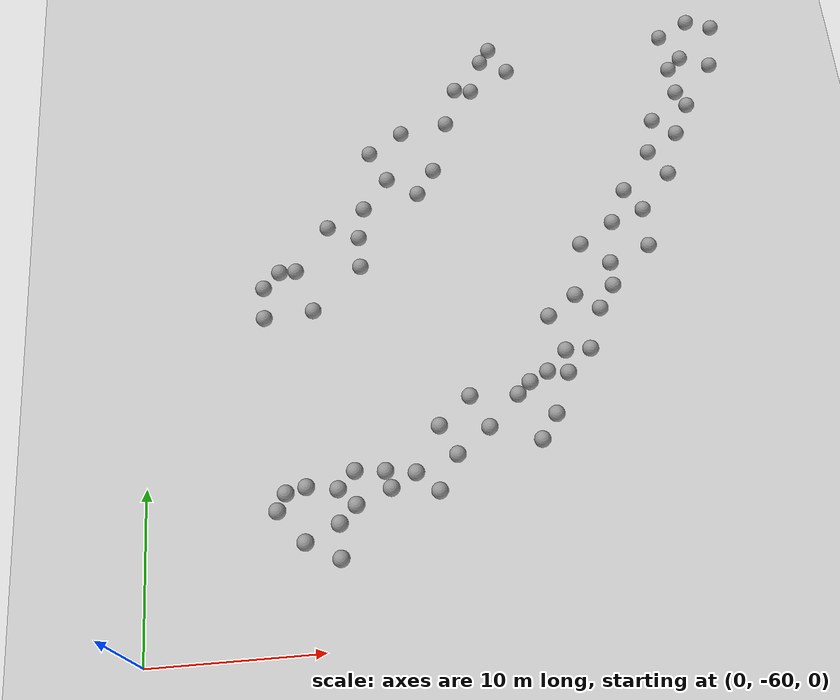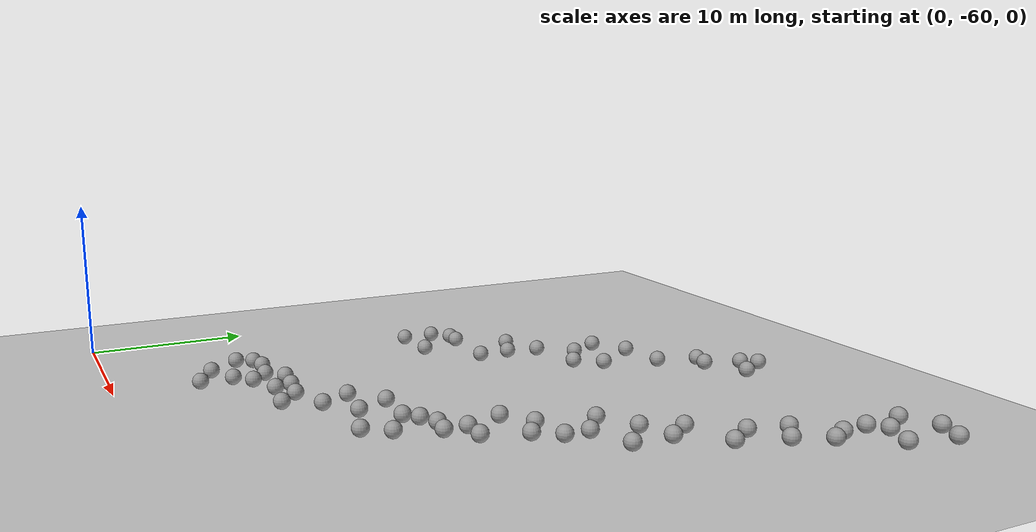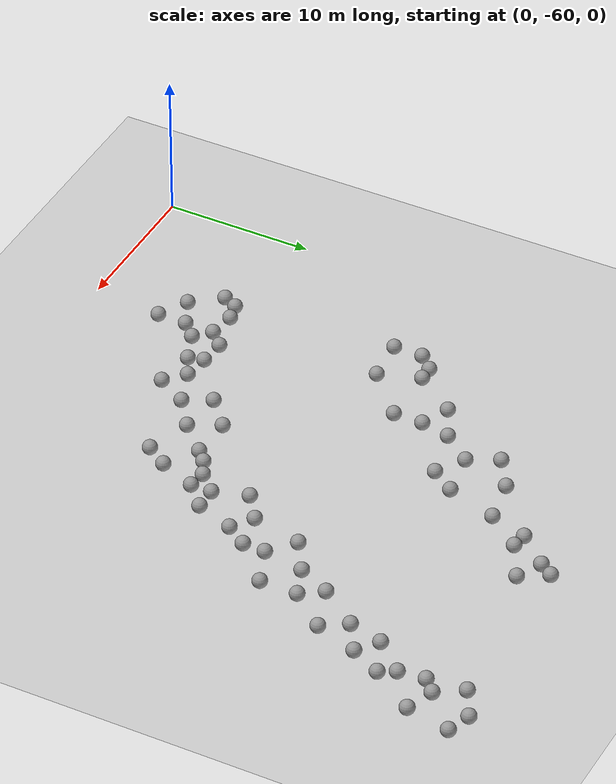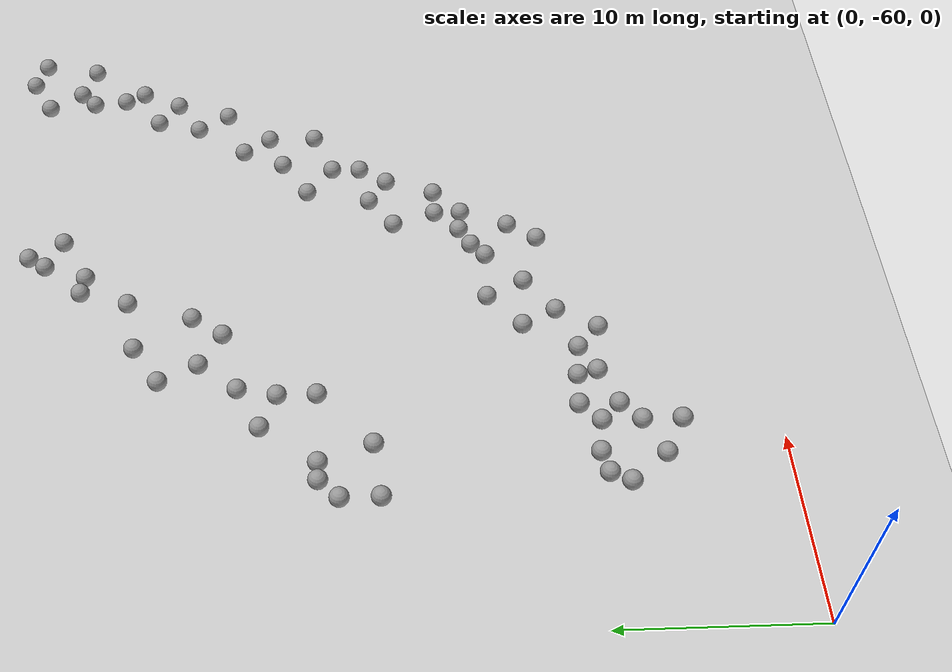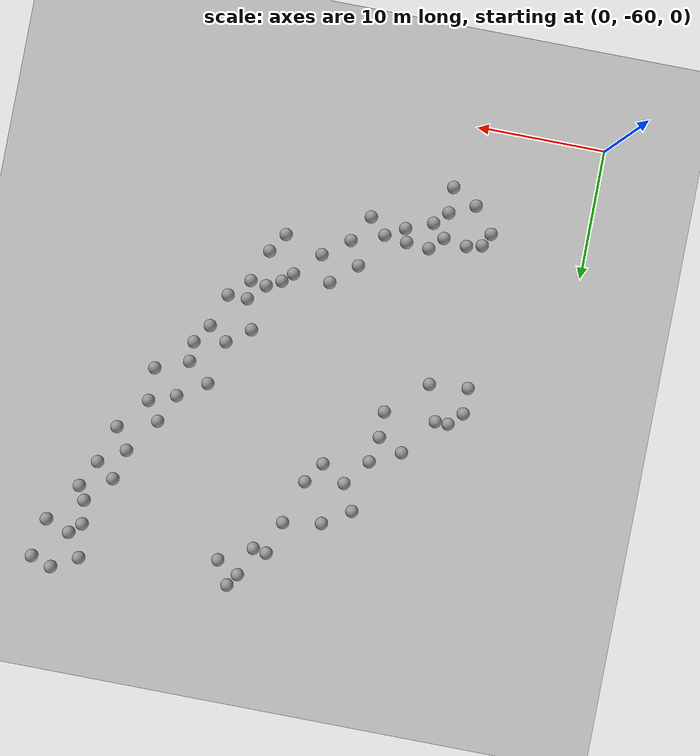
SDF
<sdf version="1.6">
 <world name="default">
  <model name="ground_plane">
   <static>1</static>
   <link name="link">
    <collision name="collision">
     <geometry><plane><normal>0 0 1</normal><size>100 100</size></plane></geometry>
     <surface><friction><ode><mu>100</mu><mu2>50</mu2></ode></friction></surface>
    </collision>
    <visual name="visual">
     <cast_shadows>0</cast_shadows>
     <geometry><plane><normal>0 0 1</normal><size>100 100</size></plane></geometry>
     <material>
      <script><uri>file://media/materials/scripts/gazebo.material</uri><name>Gazebo/Grey</name></script>
     </material>
    </visual>
   </link>
  </model>
  <model name="unit_sphere_0_clone_22">
   <pose>34.4274 -25.9481 0.5 0 -0 0</pose>
   <link name="link">
    <inertial>
     <mass>1</mass>
     <inertia><ixx>0.1</ixx><ixy>0</ixy><ixz>0</ixz><iyy>0.1</iyy><iyz>0</iyz><izz>0.1</izz></inertia>
    </inertial>
    <collision name="collision"><geometry><sphere><radius>0.5</radius></sphere></geometry></collision>
    <visual name="visual">
     <geometry><sphere><radius>0.5</radius></sphere></geometry>
     <material>
      <script><name>Gazebo/Grey</name><uri>file://media/materials/scripts/gazebo.material</uri></script>
     </material>
    </visual>
   </link>
  </model>
  <model name="unit_sphere_0_clone_23">
   <pose>28.938 -35.2104 0.5 0 -0 0</pose>
   <link name="link">
    <inertial>
     <mass>1</mass>
     <inertia><ixx>0.1</ixx><ixy>0</ixy><ixz>0</ixz><iyy>0.1</iyy><iyz>0</iyz><izz>0.1</izz></inertia>
    </inertial>
    <collision name="collision"><geometry><sphere><radius>0.5</radius></sphere></geometry></collision>
    <visual name="visual">
     <geometry><sphere><radius>0.5</radius></sphere></geometry>
     <material>
      <script><name>Gazebo/Grey</name><uri>file://media/materials/scripts/gazebo.material</uri></script>
     </material>
    </visual>
   </link>
  </model>
  <model name="unit_sphere_0_clone_24">
   <pose>22.6448 -45.4054 0.5 -0.042295 0.045819 -0.000971</pose>
   <link name="link">
    <inertial>
     <mass>1</mass>
     <inertia><ixx>0.1</ixx><ixy>0</ixy><ixz>0</ixz><iyy>0.1</iyy><iyz>0</iyz><izz>0.1</izz></inertia>
    </inertial>
    <collision name="collision"><geometry><sphere><radius>0.5</radius></sphere></geometry></collision>
    <visual name="visual">
     <geometry><sphere><radius>0.5</radius></sphere></geometry>
     <material>
      <script><name>Gazebo/Grey</name><uri>file://media/materials/scripts/gazebo.material</uri></script>
     </material>
    </visual>
   </link>
  </model>
  <model name="unit_sphere_0_clone_25">
   <pose>16.8047 -51.5632 0.5 0 -0 0</pose>
   <link name="link">
    <inertial>
     <mass>1</mass>
     <inertia><ixx>0.1</ixx><ixy>0</ixy><ixz>0</ixz><iyy>0.1</iyy><iyz>0</iyz><izz>0.1</izz></inertia>
    </inertial>
    <collision name="collision"><geometry><sphere><radius>0.5</radius></sphere></geometry></collision>
    <visual name="visual">
     <geometry><sphere><radius>0.5</radius></sphere></geometry>
     <material>
      <script><name>Gazebo/Grey</name><uri>file://media/materials/scripts/gazebo.material</uri></script>
     </material>
    </visual>
   </link>
  </model>
  <model name="unit_sphere_0_clone_26">
   <pose>9.03106 -53.9187 0.5 0 -0 0</pose>
   <link name="link">
    <inertial>
     <mass>1</mass>
     <inertia><ixx>0.1</ixx><ixy>0</ixy><ixz>0</ixz><iyy>0.1</iyy><iyz>0</iyz><izz>0.1</izz></inertia>
    </inertial>
    <collision name="collision"><geometry><sphere><radius>0.5</radius></sphere></geometry></collision>
    <visual name="visual">
     <geometry><sphere><radius>0.5</radius></sphere></geometry>
     <material>
      <script><name>Gazebo/Grey</name><uri>file://media/materials/scripts/gazebo.material</uri></script>
     </material>
    </visual>
   </link>
  </model>
  <model name="unit_sphere_0_clone_53">
   <pose>20.9303 -24.7685 0.5 0.010421 0.063507 0.000342</pose>
   <link name="link">
    <inertial>
     <mass>1</mass>
     <inertia><ixx>0.1</ixx><ixy>0</ixy><ixz>0</ixz><iyy>0.1</iyy><iyz>0</iyz><izz>0.1</izz></inertia>
    </inertial>
    <collision name="collision"><geometry><sphere><radius>0.5</radius></sphere></geometry></collision>
    <visual name="visual">
     <geometry><sphere><radius>0.5</radius></sphere></geometry>
     <material>
      <script><name>Gazebo/Grey</name><uri>file://media/materials/scripts/gazebo.material</uri></script>
     </material>
    </visual>
   </link>
  </model>
  <model name="unit_sphere_0_clone_54">
   <pose>16.882 -32.1756 0.5 0 -0 0</pose>
   <link name="link">
    <inertial>
     <mass>1</mass>
     <inertia><ixx>0.1</ixx><ixy>0</ixy><ixz>0</ixz><iyy>0.1</iyy><iyz>0</iyz><izz>0.1</izz></inertia>
    </inertial>
    <collision name="collision"><geometry><sphere><radius>0.5</radius></sphere></geometry></collision>
    <visual name="visual">
     <geometry><sphere><radius>0.5</radius></sphere></geometry>
     <material>
      <script><name>Gazebo/Grey</name><uri>file://media/materials/scripts/gazebo.material</uri></script>
     </material>
    </visual>
   </link>
  </model>
  <model name="unit_sphere_0_clone_55">
   <pose>9.98079 -39.7392 0.5 0 -0 0</pose>
   <link name="link">
    <inertial>
     <mass>1</mass>
     <inertia><ixx>0.1</ixx><ixy>0</ixy><ixz>0</ixz><iyy>0.1</iyy><iyz>0</iyz><izz>0.1</izz></inertia>
    </inertial>
    <collision name="collision"><geometry><sphere><radius>0.5</radius></sphere></geometry></collision>
    <visual name="visual">
     <geometry><sphere><radius>0.5</radius></sphere></geometry>
     <material>
      <script><name>Gazebo/Grey</name><uri>file://media/materials/scripts/gazebo.material</uri></script>
     </material>
    </visual>
   </link>
  </model>
  <model name="unit_sphere_0_clone_71">
   <pose>21.7439 -22.539 0.5 0 -0 0</pose>
   <link name="link">
    <inertial>
     <mass>1</mass>
     <inertia><ixx>0.1</ixx><ixy>0</ixy><ixz>0</ixz><iyy>0.1</iyy><iyz>0</iyz><izz>0.1</izz></inertia>
    </inertial>
    <collision name="collision"><geometry><sphere><radius>0.5</radius></sphere></geometry></collision>
    <visual name="visual">
     <geometry><sphere><radius>0.5</radius></sphere></geometry>
     <material>
      <script><name>Gazebo/Grey</name><uri>file://media/materials/scripts/gazebo.material</uri></script>
     </material>
    </visual>
   </link>
  </model>
  <model name="unit_sphere_0_clone_72">
   <pose>16.1207 -27.6464 0.5 0 -0 0</pose>
   <link name="link">
    <inertial>
     <mass>1</mass>
     <inertia><ixx>0.1</ixx><ixy>0</ixy><ixz>0</ixz><iyy>0.1</iyy><iyz>0</iyz><izz>0.1</izz></inertia>
    </inertial>
    <collision name="collision"><geometry><sphere><radius>0.5</radius></sphere></geometry></collision>
    <visual name="visual">
     <geometry><sphere><radius>0.5</radius></sphere></geometry>
     <material>
      <script><name>Gazebo/Grey</name><uri>file://media/materials/scripts/gazebo.material</uri></script>
     </material>
    </visual>
   </link>
  </model>
  <model name="unit_sphere_0_clone_73">
   <pose>11.0955 -34.1517 0.5 0 -0 0</pose>
   <link name="link">
    <inertial>
     <mass>1</mass>
     <inertia><ixx>0.1</ixx><ixy>0</ixy><ixz>0</ixz><iyy>0.1</iyy><iyz>0</iyz><izz>0.1</izz></inertia>
    </inertial>
    <collision name="collision"><geometry><sphere><radius>0.5</radius></sphere></geometry></collision>
    <visual name="visual">
     <geometry><sphere><radius>0.5</radius></sphere></geometry>
     <material>
      <script><name>Gazebo/Grey</name><uri>file://media/materials/scripts/gazebo.material</uri></script>
     </material>
    </visual>
   </link>
  </model>
  <model name="unit_sphere_0_clone_119">
   <pose>35.1208 -23.2991 0.5 0 -0 0</pose>
   <link name="link">
    <inertial>
     <mass>1</mass>
     <inertia><ixx>0.1</ixx><ixy>0</ixy><ixz>0</ixz><iyy>0.1</iyy><iyz>0</iyz><izz>0.1</izz></inertia>
    </inertial>
    <collision name="collision"><geometry><sphere><radius>0.5</radius></sphere></geometry></collision>
    <visual name="visual">
     <geometry><sphere><radius>0.5</radius></sphere></geometry>
     <material>
      <script><name>Gazebo/Grey</name><uri>file://media/materials/scripts/gazebo.material</uri></script>
     </material>
    </visual>
   </link>
  </model>
  <model name="unit_sphere_0_clone_120">
   <pose>31.9432 -30.3419 0.5 0 -0 0</pose>
   <link name="link">
    <inertial>
     <mass>1</mass>
     <inertia><ixx>0.1</ixx><ixy>0</ixy><ixz>0</ixz><iyy>0.1</iyy><iyz>0</iyz><izz>0.1</izz></inertia>
    </inertial>
    <collision name="collision"><geometry><sphere><radius>0.5</radius></sphere></geometry></collision>
    <visual name="visual">
     <geometry><sphere><radius>0.5</radius></sphere></geometry>
     <material>
      <script><name>Gazebo/Grey</name><uri>file://media/materials/scripts/gazebo.material</uri></script>
     </material>
    </visual>
   </link>
  </model>
  <model name="unit_sphere_0_clone_121">
   <pose>31 -34.4472 0.5 0 -0 0</pose>
   <link name="link">
    <inertial>
     <mass>1</mass>
     <inertia><ixx>0.1</ixx><ixy>0</ixy><ixz>0</ixz><iyy>0.1</iyy><iyz>0</iyz><izz>0.1</izz></inertia>
    </inertial>
    <collision name="collision"><geometry><sphere><radius>0.5</radius></sphere></geometry></collision>
    <visual name="visual">
     <geometry><sphere><radius>0.5</radius></sphere></geometry>
     <material>
      <script><name>Gazebo/Grey</name><uri>file://media/materials/scripts/gazebo.material</uri></script>
     </material>
    </visual>
   </link>
  </model>
  <model name="unit_sphere_0_clone_122">
   <pose>33.9652 -29.0773 0.5 0 -0 0</pose>
   <link name="link">
    <inertial>
     <mass>1</mass>
     <inertia><ixx>0.1</ixx><ixy>0</ixy><ixz>0</ixz><iyy>0.1</iyy><iyz>0</iyz><izz>0.1</izz></inertia>
    </inertial>
    <collision name="collision"><geometry><sphere><radius>0.5</radius></sphere></geometry></collision>
    <visual name="visual">
     <geometry><sphere><radius>0.5</radius></sphere></geometry>
     <material>
      <script><name>Gazebo/Grey</name><uri>file://media/materials/scripts/gazebo.material</uri></script>
     </material>
    </visual>
   </link>
  </model>
  <model name="unit_sphere_0_clone_123">
   <pose>26.7672 -36.5826 0.5 0 -0 0</pose>
   <link name="link">
    <inertial>
     <mass>1</mass>
     <inertia><ixx>0.1</ixx><ixy>0</ixy><ixz>0</ixz><iyy>0.1</iyy><iyz>0</iyz><izz>0.1</izz></inertia>
    </inertial>
    <collision name="collision"><geometry><sphere><radius>0.5</radius></sphere></geometry></collision>
    <visual name="visual">
     <geometry><sphere><radius>0.5</radius></sphere></geometry>
     <material>
      <script><name>Gazebo/Grey</name><uri>file://media/materials/scripts/gazebo.material</uri></script>
     </material>
    </visual>
   </link>
  </model>
  <model name="unit_sphere_0_clone_124">
   <pose>24.2338 -41.2787 0.5 0 -0 0</pose>
   <link name="link">
    <inertial>
     <mass>1</mass>
     <inertia><ixx>0.1</ixx><ixy>0</ixy><ixz>0</ixz><iyy>0.1</iyy><iyz>0</iyz><izz>0.1</izz></inertia>
    </inertial>
    <collision name="collision"><geometry><sphere><radius>0.5</radius></sphere></geometry></collision>
    <visual name="visual">
     <geometry><sphere><radius>0.5</radius></sphere></geometry>
     <material>
      <script><name>Gazebo/Grey</name><uri>file://media/materials/scripts/gazebo.material</uri></script>
     </material>
    </visual>
   </link>
  </model>
  <model name="unit_sphere_0_clone_125">
   <pose>28.4175 -39.5393 0.5 0 -0 0</pose>
   <link name="link">
    <inertial>
     <mass>1</mass>
     <inertia><ixx>0.1</ixx><ixy>0</ixy><ixz>0</ixz><iyy>0.1</iyy><iyz>0</iyz><izz>0.1</izz></inertia>
    </inertial>
    <collision name="collision"><geometry><sphere><radius>0.5</radius></sphere></geometry></collision>
    <visual name="visual">
     <geometry><sphere><radius>0.5</radius></sphere></geometry>
     <material>
      <script><name>Gazebo/Grey</name><uri>file://media/materials/scripts/gazebo.material</uri></script>
     </material>
    </visual>
   </link>
  </model>
  <model name="unit_sphere_0_clone_126">
   <pose>17.0681 -47.6854 0.5 0 -0 0</pose>
   <link name="link">
    <inertial>
     <mass>1</mass>
     <inertia><ixx>0.1</ixx><ixy>0</ixy><ixz>0</ixz><iyy>0.1</iyy><iyz>0</iyz><izz>0.1</izz></inertia>
    </inertial>
    <collision name="collision"><geometry><sphere><radius>0.5</radius></sphere></geometry></collision>
    <visual name="visual">
     <geometry><sphere><radius>0.5</radius></sphere></geometry>
     <material>
      <script><name>Gazebo/Grey</name><uri>file://media/materials/scripts/gazebo.material</uri></script>
     </material>
    </visual>
   </link>
  </model>
  <model name="unit_sphere_0_clone_127">
   <pose>11 -55 0.5 0 -0 0</pose>
   <link name="link">
    <inertial>
     <mass>1</mass>
     <inertia><ixx>0.1</ixx><ixy>0</ixy><ixz>0</ixz><iyy>0.1</iyy><iyz>0</iyz><izz>0.1</izz></inertia>
    </inertial>
    <collision name="collision"><geometry><sphere><radius>0.5</radius></sphere></geometry></collision>
    <visual name="visual">
     <geometry><sphere><radius>0.5</radius></sphere></geometry>
     <material>
      <script><name>Gazebo/Grey</name><uri>file://media/materials/scripts/gazebo.material</uri></script>
     </material>
    </visual>
   </link>
  </model>
  <model name="unit_sphere_0_clone_146">
   <pose>13.7694 -50.1461 0.5 -0.070266 -0.018956 0.000648</pose>
   <link name="link">
    <inertial>
     <mass>1</mass>
     <inertia><ixx>0.1</ixx><ixy>0</ixy><ixz>0</ixz><iyy>0.1</iyy><iyz>0</iyz><izz>0.1</izz></inertia>
    </inertial>
    <collision name="collision"><geometry><sphere><radius>0.5</radius></sphere></geometry></collision>
    <visual name="visual">
     <geometry><sphere><radius>0.5</radius></sphere></geometry>
     <material>
      <script><name>Gazebo/Grey</name><uri>file://media/materials/scripts/gazebo.material</uri></script>
     </material>
    </visual>
   </link>
  </model>
  <model name="unit_sphere_0_clone_147">
   <pose>9.18305 -50.7277 0.5 0 -0 0</pose>
   <link name="link">
    <inertial>
     <mass>1</mass>
     <inertia><ixx>0.1</ixx><ixy>0</ixy><ixz>0</ixz><iyy>0.1</iyy><iyz>0</iyz><izz>0.1</izz></inertia>
    </inertial>
    <collision name="collision"><geometry><sphere><radius>0.5</radius></sphere></geometry></collision>
    <visual name="visual">
     <geometry><sphere><radius>0.5</radius></sphere></geometry>
     <material>
      <script><name>Gazebo/Grey</name><uri>file://media/materials/scripts/gazebo.material</uri></script>
     </material>
    </visual>
   </link>
  </model>
  <model name="unit_sphere_1_clone_1">
   <pose>36 -20.4393 0.5 0 -0 0</pose>
   <link name="link">
    <inertial>
     <mass>1</mass>
     <inertia><ixx>0.1</ixx><ixy>0</ixy><ixz>0</ixz><iyy>0.1</iyy><iyz>0</iyz><izz>0.1</izz></inertia>
    </inertial>
    <collision name="collision"><geometry><sphere><radius>0.5</radius></sphere></geometry></collision>
    <visual name="visual">
     <geometry><sphere><radius>0.5</radius></sphere></geometry>
     <material>
      <script><name>Gazebo/Grey</name><uri>file://media/materials/scripts/gazebo.material</uri></script>
     </material>
    </visual>
   </link>
  </model>
  <model name="unit_sphere_1_clone_7">
   <pose>22.387 -21.6067 0.5 0 -0 0</pose>
   <link name="link">
    <inertial>
     <mass>1</mass>
     <inertia><ixx>0.1</ixx><ixy>0</ixy><ixz>0</ixz><iyy>0.1</iyy><iyz>0</iyz><izz>0.1</izz></inertia>
    </inertial>
    <collision name="collision"><geometry><sphere><radius>0.5</radius></sphere></geometry></collision>
    <visual name="visual">
     <geometry><sphere><radius>0.5</radius></sphere></geometry>
     <material>
      <script><name>Gazebo/Grey</name><uri>file://media/materials/scripts/gazebo.material</uri></script>
     </material>
    </visual>
   </link>
  </model>
  <model name="unit_sphere_1_clone_8">
   <pose>23.4368 -23.3859 0.5 0 -0 0</pose>
   <link name="link">
    <inertial>
     <mass>1</mass>
     <inertia><ixx>0.1</ixx><ixy>0</ixy><ixz>0</ixz><iyy>0.1</iyy><iyz>0</iyz><izz>0.1</izz></inertia>
    </inertial>
    <collision name="collision"><geometry><sphere><radius>0.5</radius></sphere></geometry></collision>
    <visual name="visual">
     <geometry><sphere><radius>0.5</radius></sphere></geometry>
     <material>
      <script><name>Gazebo/Grey</name><uri>file://media/materials/scripts/gazebo.material</uri></script>
     </material>
    </visual>
   </link>
  </model>
  <model name="unit_sphere_1_clone_9">
   <pose>19.8801 -24.5966 0.5 -0.010448 -0.063271 0.00034</pose>
   <link name="link">
    <inertial>
     <mass>1</mass>
     <inertia><ixx>0.1</ixx><ixy>0</ixy><ixz>0</ixz><iyy>0.1</iyy><iyz>0</iyz><izz>0.1</izz></inertia>
    </inertial>
    <collision name="collision"><geometry><sphere><radius>0.5</radius></sphere></geometry></collision>
    <visual name="visual">
     <geometry><sphere><radius>0.5</radius></sphere></geometry>
     <material>
      <script><name>Gazebo/Grey</name><uri>file://media/materials/scripts/gazebo.material</uri></script>
     </material>
    </visual>
   </link>
  </model>
  <model name="unit_sphere_1_clone_10">
   <pose>19.0775 -27.1391 0.5 0 -0 0</pose>
   <link name="link">
    <inertial>
     <mass>1</mass>
     <inertia><ixx>0.1</ixx><ixy>0</ixy><ixz>0</ixz><iyy>0.1</iyy><iyz>0</iyz><izz>0.1</izz></inertia>
    </inertial>
    <collision name="collision"><geometry><sphere><radius>0.5</radius></sphere></geometry></collision>
    <visual name="visual">
     <geometry><sphere><radius>0.5</radius></sphere></geometry>
     <material>
      <script><name>Gazebo/Grey</name><uri>file://media/materials/scripts/gazebo.material</uri></script>
     </material>
    </visual>
   </link>
  </model>
  <model name="unit_sphere_1_clone_11">
   <pose>18 -30.5615 0.5 0 -0 0</pose>
   <link name="link">
    <inertial>
     <mass>1</mass>
     <inertia><ixx>0.1</ixx><ixy>0</ixy><ixz>0</ixz><iyy>0.1</iyy><iyz>0</iyz><izz>0.1</izz></inertia>
    </inertial>
    <collision name="collision"><geometry><sphere><radius>0.5</radius></sphere></geometry></collision>
    <visual name="visual">
     <geometry><sphere><radius>0.5</radius></sphere></geometry>
     <material>
      <script><name>Gazebo/Grey</name><uri>file://media/materials/scripts/gazebo.material</uri></script>
     </material>
    </visual>
   </link>
  </model>
  <model name="unit_sphere_1_clone_12">
   <pose>14 -29 0.5 0 -0 0</pose>
   <link name="link">
    <inertial>
     <mass>1</mass>
     <inertia><ixx>0.1</ixx><ixy>0</ixy><ixz>0</ixz><iyy>0.1</iyy><iyz>0</iyz><izz>0.1</izz></inertia>
    </inertial>
    <collision name="collision"><geometry><sphere><radius>0.5</radius></sphere></geometry></collision>
    <visual name="visual">
     <geometry><sphere><radius>0.5</radius></sphere></geometry>
     <material>
      <script><name>Gazebo/Grey</name><uri>file://media/materials/scripts/gazebo.material</uri></script>
     </material>
    </visual>
   </link>
  </model>
  <model name="unit_sphere_1_clone_13">
   <pose>15 -31 0.5 0 -0 0</pose>
   <link name="link">
    <inertial>
     <mass>1</mass>
     <inertia><ixx>0.1</ixx><ixy>0</ixy><ixz>0</ixz><iyy>0.1</iyy><iyz>0</iyz><izz>0.1</izz></inertia>
    </inertial>
    <collision name="collision"><geometry><sphere><radius>0.5</radius></sphere></geometry></collision>
    <visual name="visual">
     <geometry><sphere><radius>0.5</radius></sphere></geometry>
     <material>
      <script><name>Gazebo/Grey</name><uri>file://media/materials/scripts/gazebo.material</uri></script>
     </material>
    </visual>
   </link>
  </model>
  <model name="unit_sphere_1_clone_14">
   <pose>13.4163 -33 0.5 0 -0 0</pose>
   <link name="link">
    <inertial>
     <mass>1</mass>
     <inertia><ixx>0.1</ixx><ixy>0</ixy><ixz>0</ixz><iyy>0.1</iyy><iyz>0</iyz><izz>0.1</izz></inertia>
    </inertial>
    <collision name="collision"><geometry><sphere><radius>0.5</radius></sphere></geometry></collision>
    <visual name="visual">
     <geometry><sphere><radius>0.5</radius></sphere></geometry>
     <material>
      <script><name>Gazebo/Grey</name><uri>file://media/materials/scripts/gazebo.material</uri></script>
     </material>
    </visual>
   </link>
  </model>
  <model name="unit_sphere_1_clone_15">
   <pose>13 -35 0.5 0 -0 0</pose>
   <link name="link">
    <inertial>
     <mass>1</mass>
     <inertia><ixx>0.1</ixx><ixy>0</ixy><ixz>0</ixz><iyy>0.1</iyy><iyz>0</iyz><izz>0.1</izz></inertia>
    </inertial>
    <collision name="collision"><geometry><sphere><radius>0.5</radius></sphere></geometry></collision>
    <visual name="visual">
     <geometry><sphere><radius>0.5</radius></sphere></geometry>
     <material>
      <script><name>Gazebo/Grey</name><uri>file://media/materials/scripts/gazebo.material</uri></script>
     </material>
    </visual>
   </link>
  </model>
  <model name="unit_sphere_1_clone_16">
   <pose>13 -37 0.5 0 -0 0</pose>
   <link name="link">
    <inertial>
     <mass>1</mass>
     <inertia><ixx>0.1</ixx><ixy>0</ixy><ixz>0</ixz><iyy>0.1</iyy><iyz>0</iyz><izz>0.1</izz></inertia>
    </inertial>
    <collision name="collision"><geometry><sphere><radius>0.5</radius></sphere></geometry></collision>
    <visual name="visual">
     <geometry><sphere><radius>0.5</radius></sphere></geometry>
     <material>
      <script><name>Gazebo/Grey</name><uri>file://media/materials/scripts/gazebo.material</uri></script>
     </material>
    </visual>
   </link>
  </model>
  <model name="unit_sphere_1_clone_17">
   <pose>9 -37 0.5 0 -0 0</pose>
   <link name="link">
    <inertial>
     <mass>1</mass>
     <inertia><ixx>0.1</ixx><ixy>0</ixy><ixz>0</ixz><iyy>0.1</iyy><iyz>0</iyz><izz>0.1</izz></inertia>
    </inertial>
    <collision name="collision"><geometry><sphere><radius>0.5</radius></sphere></geometry></collision>
    <visual name="visual">
     <geometry><sphere><radius>0.5</radius></sphere></geometry>
     <material>
      <script><name>Gazebo/Grey</name><uri>file://media/materials/scripts/gazebo.material</uri></script>
     </material>
    </visual>
   </link>
  </model>
  <model name="unit_sphere_1_clone_18">
   <pose>8 -37 0.5 0 -0 0</pose>
   <link name="link">
    <inertial>
     <mass>1</mass>
     <inertia><ixx>0.1</ixx><ixy>0</ixy><ixz>0</ixz><iyy>0.1</iyy><iyz>0</iyz><izz>0.1</izz></inertia>
    </inertial>
    <collision name="collision"><geometry><sphere><radius>0.5</radius></sphere></geometry></collision>
    <visual name="visual">
     <geometry><sphere><radius>0.5</radius></sphere></geometry>
     <material>
      <script><name>Gazebo/Grey</name><uri>file://media/materials/scripts/gazebo.material</uri></script>
     </material>
    </visual>
   </link>
  </model>
  <model name="unit_sphere_1_clone_19">
   <pose>7 -40 0.5 0 -0 0</pose>
   <link name="link">
    <inertial>
     <mass>1</mass>
     <inertia><ixx>0.1</ixx><ixy>0</ixy><ixz>0</ixz><iyy>0.1</iyy><iyz>0</iyz><izz>0.1</izz></inertia>
    </inertial>
    <collision name="collision"><geometry><sphere><radius>0.5</radius></sphere></geometry></collision>
    <visual name="visual">
     <geometry><sphere><radius>0.5</radius></sphere></geometry>
     <material>
      <script><name>Gazebo/Grey</name><uri>file://media/materials/scripts/gazebo.material</uri></script>
     </material>
    </visual>
   </link>
  </model>
  <model name="unit_sphere_1_clone_20">
   <pose>7 -38 0.5 0 -0 0</pose>
   <link name="link">
    <inertial>
     <mass>1</mass>
     <inertia><ixx>0.1</ixx><ixy>0</ixy><ixz>0</ixz><iyy>0.1</iyy><iyz>0</iyz><izz>0.1</izz></inertia>
    </inertial>
    <collision name="collision"><geometry><sphere><radius>0.5</radius></sphere></geometry></collision>
    <visual name="visual">
     <geometry><sphere><radius>0.5</radius></sphere></geometry>
     <material>
      <script><name>Gazebo/Grey</name><uri>file://media/materials/scripts/gazebo.material</uri></script>
     </material>
    </visual>
   </link>
  </model>
  <model name="unit_sphere_1_clone_253">
   <pose>7.49742 -52 0.5 0 -0 0</pose>
   <link name="link">
    <inertial>
     <mass>1</mass>
     <inertia><ixx>0.1</ixx><ixy>0</ixy><ixz>0</ixz><iyy>0.1</iyy><iyz>0</iyz><izz>0.1</izz></inertia>
    </inertial>
    <collision name="collision"><geometry><sphere><radius>0.5</radius></sphere></geometry></collision>
    <visual name="visual">
     <geometry><sphere><radius>0.5</radius></sphere></geometry>
     <material>
      <script><name>Gazebo/Grey</name><uri>file://media/materials/scripts/gazebo.material</uri></script>
     </material>
    </visual>
   </link>
  </model>
  <model name="unit_sphere_1_clone_254">
   <pose>8 -51 0.5 0 -0 0</pose>
   <link name="link">
    <inertial>
     <mass>1</mass>
     <inertia><ixx>0.1</ixx><ixy>0</ixy><ixz>0</ixz><iyy>0.1</iyy><iyz>0</iyz><izz>0.1</izz></inertia>
    </inertial>
    <collision name="collision"><geometry><sphere><radius>0.5</radius></sphere></geometry></collision>
    <visual name="visual">
     <geometry><sphere><radius>0.5</radius></sphere></geometry>
     <material>
      <script><name>Gazebo/Grey</name><uri>file://media/materials/scripts/gazebo.material</uri></script>
     </material>
    </visual>
   </link>
  </model>
  <model name="unit_sphere_1_clone_255">
   <pose>11 -53 0.5 0 -0 0</pose>
   <link name="link">
    <inertial>
     <mass>1</mass>
     <inertia><ixx>0.1</ixx><ixy>0</ixy><ixz>0</ixz><iyy>0.1</iyy><iyz>0</iyz><izz>0.1</izz></inertia>
    </inertial>
    <collision name="collision"><geometry><sphere><radius>0.5</radius></sphere></geometry></collision>
    <visual name="visual">
     <geometry><sphere><radius>0.5</radius></sphere></geometry>
     <material>
      <script><name>Gazebo/Grey</name><uri>file://media/materials/scripts/gazebo.material</uri></script>
     </material>
    </visual>
   </link>
  </model>
  <model name="unit_sphere_1_clone_256">
   <pose>12 -50 0.5 0 -0 0</pose>
   <link name="link">
    <inertial>
     <mass>1</mass>
     <inertia><ixx>0.1</ixx><ixy>0</ixy><ixz>0</ixz><iyy>0.1</iyy><iyz>0</iyz><izz>0.1</izz></inertia>
    </inertial>
    <collision name="collision"><geometry><sphere><radius>0.5</radius></sphere></geometry></collision>
    <visual name="visual">
     <geometry><sphere><radius>0.5</radius></sphere></geometry>
     <material>
      <script><name>Gazebo/Grey</name><uri>file://media/materials/scripts/gazebo.material</uri></script>
     </material>
    </visual>
   </link>
  </model>
  <model name="unit_sphere_1_clone_257">
   <pose>12 -52 0.5 0 -0 0</pose>
   <link name="link">
    <inertial>
     <mass>1</mass>
     <inertia><ixx>0.1</ixx><ixy>0</ixy><ixz>0</ixz><iyy>0.1</iyy><iyz>0</iyz><izz>0.1</izz></inertia>
    </inertial>
    <collision name="collision"><geometry><sphere><radius>0.5</radius></sphere></geometry></collision>
    <visual name="visual">
     <geometry><sphere><radius>0.5</radius></sphere></geometry>
     <material>
      <script><name>Gazebo/Grey</name><uri>file://media/materials/scripts/gazebo.material</uri></script>
     </material>
    </visual>
   </link>
  </model>
  <model name="unit_sphere_1_clone_258">
   <pose>14.049 -51.1815 0.5 0.069932 0.018987 0.00065</pose>
   <link name="link">
    <inertial>
     <mass>1</mass>
     <inertia><ixx>0.1</ixx><ixy>0</ixy><ixz>0</ixz><iyy>0.1</iyy><iyz>0</iyz><izz>0.1</izz></inertia>
    </inertial>
    <collision name="collision"><geometry><sphere><radius>0.5</radius></sphere></geometry></collision>
    <visual name="visual">
     <geometry><sphere><radius>0.5</radius></sphere></geometry>
     <material>
      <script><name>Gazebo/Grey</name><uri>file://media/materials/scripts/gazebo.material</uri></script>
     </material>
    </visual>
   </link>
  </model>
  <model name="unit_sphere_1_clone_259">
   <pose>11 -51 0.5 0 -0 0</pose>
   <link name="link">
    <inertial>
     <mass>1</mass>
     <inertia><ixx>0.1</ixx><ixy>0</ixy><ixz>0</ixz><iyy>0.1</iyy><iyz>0</iyz><izz>0.1</izz></inertia>
    </inertial>
    <collision name="collision"><geometry><sphere><radius>0.5</radius></sphere></geometry></collision>
    <visual name="visual">
     <geometry><sphere><radius>0.5</radius></sphere></geometry>
     <material>
      <script><name>Gazebo/Grey</name><uri>file://media/materials/scripts/gazebo.material</uri></script>
     </material>
    </visual>
   </link>
  </model>
  <model name="unit_sphere_1_clone_260">
   <pose>15.526 -50.3817 0.5 0 -0 0</pose>
   <link name="link">
    <inertial>
     <mass>1</mass>
     <inertia><ixx>0.1</ixx><ixy>0</ixy><ixz>0</ixz><iyy>0.1</iyy><iyz>0</iyz><izz>0.1</izz></inertia>
    </inertial>
    <collision name="collision"><geometry><sphere><radius>0.5</radius></sphere></geometry></collision>
    <visual name="visual">
     <geometry><sphere><radius>0.5</radius></sphere></geometry>
     <material>
      <script><name>Gazebo/Grey</name><uri>file://media/materials/scripts/gazebo.material</uri></script>
     </material>
    </visual>
   </link>
  </model>
  <model name="unit_sphere_1_clone_261">
   <pose>18 -49.4937 0.5 0 -0 0</pose>
   <link name="link">
    <inertial>
     <mass>1</mass>
     <inertia><ixx>0.1</ixx><ixy>0</ixy><ixz>0</ixz><iyy>0.1</iyy><iyz>0</iyz><izz>0.1</izz></inertia>
    </inertial>
    <collision name="collision"><geometry><sphere><radius>0.5</radius></sphere></geometry></collision>
    <visual name="visual">
     <geometry><sphere><radius>0.5</radius></sphere></geometry>
     <material>
      <script><name>Gazebo/Grey</name><uri>file://media/materials/scripts/gazebo.material</uri></script>
     </material>
    </visual>
   </link>
  </model>
  <model name="unit_sphere_1_clone_262">
   <pose>20 -48 0.5 0 -0 0</pose>
   <link name="link">
    <inertial>
     <mass>1</mass>
     <inertia><ixx>0.1</ixx><ixy>0</ixy><ixz>0</ixz><iyy>0.1</iyy><iyz>0</iyz><izz>0.1</izz></inertia>
    </inertial>
    <collision name="collision"><geometry><sphere><radius>0.5</radius></sphere></geometry></collision>
    <visual name="visual">
     <geometry><sphere><radius>0.5</radius></sphere></geometry>
     <material>
      <script><name>Gazebo/Grey</name><uri>file://media/materials/scripts/gazebo.material</uri></script>
     </material>
    </visual>
   </link>
  </model>
  <model name="unit_sphere_1_clone_263">
   <pose>23 -49 0.5 0 -0 0</pose>
   <link name="link">
    <inertial>
     <mass>1</mass>
     <inertia><ixx>0.1</ixx><ixy>0</ixy><ixz>0</ixz><iyy>0.1</iyy><iyz>0</iyz><izz>0.1</izz></inertia>
    </inertial>
    <collision name="collision"><geometry><sphere><radius>0.5</radius></sphere></geometry></collision>
    <visual name="visual">
     <geometry><sphere><radius>0.5</radius></sphere></geometry>
     <material>
      <script><name>Gazebo/Grey</name><uri>file://media/materials/scripts/gazebo.material</uri></script>
     </material>
    </visual>
   </link>
  </model>
  <model name="unit_sphere_1_clone_264">
   <pose>19 -46 0.5 0 -0 0</pose>
   <link name="link">
    <inertial>
     <mass>1</mass>
     <inertia><ixx>0.1</ixx><ixy>0</ixy><ixz>0</ixz><iyy>0.1</iyy><iyz>0</iyz><izz>0.1</izz></inertia>
    </inertial>
    <collision name="collision"><geometry><sphere><radius>0.5</radius></sphere></geometry></collision>
    <visual name="visual">
     <geometry><sphere><radius>0.5</radius></sphere></geometry>
     <material>
      <script><name>Gazebo/Grey</name><uri>file://media/materials/scripts/gazebo.material</uri></script>
     </material>
    </visual>
   </link>
  </model>
  <model name="unit_sphere_1_clone_265">
   <pose>24 -47.5049 0.5 0 -0 0</pose>
   <link name="link">
    <inertial>
     <mass>1</mass>
     <inertia><ixx>0.1</ixx><ixy>0</ixy><ixz>0</ixz><iyy>0.1</iyy><iyz>0</iyz><izz>0.1</izz></inertia>
    </inertial>
    <collision name="collision"><geometry><sphere><radius>0.5</radius></sphere></geometry></collision>
    <visual name="visual">
     <geometry><sphere><radius>0.5</radius></sphere></geometry>
     <material>
      <script><name>Gazebo/Grey</name><uri>file://media/materials/scripts/gazebo.material</uri></script>
     </material>
    </visual>
   </link>
  </model>
  <model name="unit_sphere_1_clone_266">
   <pose>21.864 -46.1254 0.5 0.042146 -0.04564 -0.000964</pose>
   <link name="link">
    <inertial>
     <mass>1</mass>
     <inertia><ixx>0.1</ixx><ixy>0</ixy><ixz>0</ixz><iyy>0.1</iyy><iyz>0</iyz><izz>0.1</izz></inertia>
    </inertial>
    <collision name="collision"><geometry><sphere><radius>0.5</radius></sphere></geometry></collision>
    <visual name="visual">
     <geometry><sphere><radius>0.5</radius></sphere></geometry>
     <material>
      <script><name>Gazebo/Grey</name><uri>file://media/materials/scripts/gazebo.material</uri></script>
     </material>
    </visual>
   </link>
  </model>
  <model name="unit_sphere_1_clone_267">
   <pose>23.7649 -44.8347 0.5 0 -0 0</pose>
   <link name="link">
    <inertial>
     <mass>1</mass>
     <inertia><ixx>0.1</ixx><ixy>0</ixy><ixz>0</ixz><iyy>0.1</iyy><iyz>0</iyz><izz>0.1</izz></inertia>
    </inertial>
    <collision name="collision"><geometry><sphere><radius>0.5</radius></sphere></geometry></collision>
    <visual name="visual">
     <geometry><sphere><radius>0.5</radius></sphere></geometry>
     <material>
      <script><name>Gazebo/Grey</name><uri>file://media/materials/scripts/gazebo.material</uri></script>
     </material>
    </visual>
   </link>
  </model>
  <model name="unit_sphere_1_clone_268">
   <pose>25 -45 0.5 0 -0 0</pose>
   <link name="link">
    <inertial>
     <mass>1</mass>
     <inertia><ixx>0.1</ixx><ixy>0</ixy><ixz>0</ixz><iyy>0.1</iyy><iyz>0</iyz><izz>0.1</izz></inertia>
    </inertial>
    <collision name="collision"><geometry><sphere><radius>0.5</radius></sphere></geometry></collision>
    <visual name="visual">
     <geometry><sphere><radius>0.5</radius></sphere></geometry>
     <material>
      <script><name>Gazebo/Grey</name><uri>file://media/materials/scripts/gazebo.material</uri></script>
     </material>
    </visual>
   </link>
  </model>
  <model name="unit_sphere_1_clone_269">
   <pose>25 -43.5759 0.5 0 -0 0</pose>
   <link name="link">
    <inertial>
     <mass>1</mass>
     <inertia><ixx>0.1</ixx><ixy>0</ixy><ixz>0</ixz><iyy>0.1</iyy><iyz>0</iyz><izz>0.1</izz></inertia>
    </inertial>
    <collision name="collision"><geometry><sphere><radius>0.5</radius></sphere></geometry></collision>
    <visual name="visual">
     <geometry><sphere><radius>0.5</radius></sphere></geometry>
     <material>
      <script><name>Gazebo/Grey</name><uri>file://media/materials/scripts/gazebo.material</uri></script>
     </material>
    </visual>
   </link>
  </model>
  <model name="unit_sphere_1_clone_270">
   <pose>26.5098 -43.5828 0.5 0 -0 0</pose>
   <link name="link">
    <inertial>
     <mass>1</mass>
     <inertia><ixx>0.1</ixx><ixy>0</ixy><ixz>0</ixz><iyy>0.1</iyy><iyz>0</iyz><izz>0.1</izz></inertia>
    </inertial>
    <collision name="collision"><geometry><sphere><radius>0.5</radius></sphere></geometry></collision>
    <visual name="visual">
     <geometry><sphere><radius>0.5</radius></sphere></geometry>
     <material>
      <script><name>Gazebo/Grey</name><uri>file://media/materials/scripts/gazebo.material</uri></script>
     </material>
    </visual>
   </link>
  </model>
  <model name="unit_sphere_1_clone_271">
   <pose>26 -40 0.5 0 -0 0</pose>
   <link name="link">
    <inertial>
     <mass>1</mass>
     <inertia><ixx>0.1</ixx><ixy>0</ixy><ixz>0</ixz><iyy>0.1</iyy><iyz>0</iyz><izz>0.1</izz></inertia>
    </inertial>
    <collision name="collision"><geometry><sphere><radius>0.5</radius></sphere></geometry></collision>
    <visual name="visual">
     <geometry><sphere><radius>0.5</radius></sphere></geometry>
     <material>
      <script><name>Gazebo/Grey</name><uri>file://media/materials/scripts/gazebo.material</uri></script>
     </material>
    </visual>
   </link>
  </model>
  <model name="unit_sphere_1_clone_272">
   <pose>27.4275 -41 0.5 0 -0 0</pose>
   <link name="link">
    <inertial>
     <mass>1</mass>
     <inertia><ixx>0.1</ixx><ixy>0</ixy><ixz>0</ixz><iyy>0.1</iyy><iyz>0</iyz><izz>0.1</izz></inertia>
    </inertial>
    <collision name="collision"><geometry><sphere><radius>0.5</radius></sphere></geometry></collision>
    <visual name="visual">
     <geometry><sphere><radius>0.5</radius></sphere></geometry>
     <material>
      <script><name>Gazebo/Grey</name><uri>file://media/materials/scripts/gazebo.material</uri></script>
     </material>
    </visual>
   </link>
  </model>
  <model name="unit_sphere_1_clone_273">
   <pose>28.4617 -38 0.5 0 -0 0</pose>
   <link name="link">
    <inertial>
     <mass>1</mass>
     <inertia><ixx>0.1</ixx><ixy>0</ixy><ixz>0</ixz><iyy>0.1</iyy><iyz>0</iyz><izz>0.1</izz></inertia>
    </inertial>
    <collision name="collision"><geometry><sphere><radius>0.5</radius></sphere></geometry></collision>
    <visual name="visual">
     <geometry><sphere><radius>0.5</radius></sphere></geometry>
     <material>
      <script><name>Gazebo/Grey</name><uri>file://media/materials/scripts/gazebo.material</uri></script>
     </material>
    </visual>
   </link>
  </model>
  <model name="unit_sphere_1_clone_274">
   <pose>31 -37 0.5 0 -0 0</pose>
   <link name="link">
    <inertial>
     <mass>1</mass>
     <inertia><ixx>0.1</ixx><ixy>0</ixy><ixz>0</ixz><iyy>0.1</iyy><iyz>0</iyz><izz>0.1</izz></inertia>
    </inertial>
    <collision name="collision"><geometry><sphere><radius>0.5</radius></sphere></geometry></collision>
    <visual name="visual">
     <geometry><sphere><radius>0.5</radius></sphere></geometry>
     <material>
      <script><name>Gazebo/Grey</name><uri>file://media/materials/scripts/gazebo.material</uri></script>
     </material>
    </visual>
   </link>
  </model>
  <model name="unit_sphere_1_clone_275">
   <pose>30 -33 0.5 0 -0 0</pose>
   <link name="link">
    <inertial>
     <mass>1</mass>
     <inertia><ixx>0.1</ixx><ixy>0</ixy><ixz>0</ixz><iyy>0.1</iyy><iyz>0</iyz><izz>0.1</izz></inertia>
    </inertial>
    <collision name="collision"><geometry><sphere><radius>0.5</radius></sphere></geometry></collision>
    <visual name="visual">
     <geometry><sphere><radius>0.5</radius></sphere></geometry>
     <material>
      <script><name>Gazebo/Grey</name><uri>file://media/materials/scripts/gazebo.material</uri></script>
     </material>
    </visual>
   </link>
  </model>
  <model name="unit_sphere_1_clone_276">
   <pose>33 -32 0.5 0 -0 0</pose>
   <link name="link">
    <inertial>
     <mass>1</mass>
     <inertia><ixx>0.1</ixx><ixy>0</ixy><ixz>0</ixz><iyy>0.1</iyy><iyz>0</iyz><izz>0.1</izz></inertia>
    </inertial>
    <collision name="collision"><geometry><sphere><radius>0.5</radius></sphere></geometry></collision>
    <visual name="visual">
     <geometry><sphere><radius>0.5</radius></sphere></geometry>
     <material>
      <script><name>Gazebo/Grey</name><uri>file://media/materials/scripts/gazebo.material</uri></script>
     </material>
    </visual>
   </link>
  </model>
  <model name="unit_sphere_1_clone_277">
   <pose>35 -27 0.5 0 -0 0</pose>
   <link name="link">
    <inertial>
     <mass>1</mass>
     <inertia><ixx>0.1</ixx><ixy>0</ixy><ixz>0</ixz><iyy>0.1</iyy><iyz>0</iyz><izz>0.1</izz></inertia>
    </inertial>
    <collision name="collision"><geometry><sphere><radius>0.5</radius></sphere></geometry></collision>
    <visual name="visual">
     <geometry><sphere><radius>0.5</radius></sphere></geometry>
     <material>
      <script><name>Gazebo/Grey</name><uri>file://media/materials/scripts/gazebo.material</uri></script>
     </material>
    </visual>
   </link>
  </model>
  <model name="unit_sphere_1_clone_278">
   <pose>32.5583 -28 0.5 0 -0 0</pose>
   <link name="link">
    <inertial>
     <mass>1</mass>
     <inertia><ixx>0.1</ixx><ixy>0</ixy><ixz>0</ixz><iyy>0.1</iyy><iyz>0</iyz><izz>0.1</izz></inertia>
    </inertial>
    <collision name="collision"><geometry><sphere><radius>0.5</radius></sphere></geometry></collision>
    <visual name="visual">
     <geometry><sphere><radius>0.5</radius></sphere></geometry>
     <material>
      <script><name>Gazebo/Grey</name><uri>file://media/materials/scripts/gazebo.material</uri></script>
     </material>
    </visual>
   </link>
  </model>
  <model name="unit_sphere_1_clone_279">
   <pose>34.2371 -24.1255 0.5 0 -0 0</pose>
   <link name="link">
    <inertial>
     <mass>1</mass>
     <inertia><ixx>0.1</ixx><ixy>0</ixy><ixz>0</ixz><iyy>0.1</iyy><iyz>0</iyz><izz>0.1</izz></inertia>
    </inertial>
    <collision name="collision"><geometry><sphere><radius>0.5</radius></sphere></geometry></collision>
    <visual name="visual">
     <geometry><sphere><radius>0.5</radius></sphere></geometry>
     <material>
      <script><name>Gazebo/Grey</name><uri>file://media/materials/scripts/gazebo.material</uri></script>
     </material>
    </visual>
   </link>
  </model>
  <model name="unit_sphere_1_clone_280">
   <pose>37 -24 0.5 0 -0 0</pose>
   <link name="link">
    <inertial>
     <mass>1</mass>
     <inertia><ixx>0.1</ixx><ixy>0</ixy><ixz>0</ixz><iyy>0.1</iyy><iyz>0</iyz><izz>0.1</izz></inertia>
    </inertial>
    <collision name="collision"><geometry><sphere><radius>0.5</radius></sphere></geometry></collision>
    <visual name="visual">
     <geometry><sphere><radius>0.5</radius></sphere></geometry>
     <material>
      <script><name>Gazebo/Grey</name><uri>file://media/materials/scripts/gazebo.material</uri></script>
     </material>
    </visual>
   </link>
  </model>
  <model name="unit_sphere_1_clone_281">
   <pose>34 -21.5266 0.5 0 -0 0</pose>
   <link name="link">
    <inertial>
     <mass>1</mass>
     <inertia><ixx>0.1</ixx><ixy>0</ixy><ixz>0</ixz><iyy>0.1</iyy><iyz>0</iyz><izz>0.1</izz></inertia>
    </inertial>
    <collision name="collision"><geometry><sphere><radius>0.5</radius></sphere></geometry></collision>
    <visual name="visual">
     <geometry><sphere><radius>0.5</radius></sphere></geometry>
     <material>
      <script><name>Gazebo/Grey</name><uri>file://media/materials/scripts/gazebo.material</uri></script>
     </material>
    </visual>
   </link>
  </model>
  <model name="unit_sphere_1_clone_282">
   <pose>37.5978 -21 0.5 0 -0 0</pose>
   <link name="link">
    <inertial>
     <mass>1</mass>
     <inertia><ixx>0.1</ixx><ixy>0</ixy><ixz>0</ixz><iyy>0.1</iyy><iyz>0</iyz><izz>0.1</izz></inertia>
    </inertial>
    <collision name="collision"><geometry><sphere><radius>0.5</radius></sphere></geometry></collision>
    <visual name="visual">
     <geometry><sphere><radius>0.5</radius></sphere></geometry>
     <material>
      <script><name>Gazebo/Grey</name><uri>file://media/materials/scripts/gazebo.material</uri></script>
     </material>
    </visual>
   </link>
  </model>
 </world>
</sdf>
